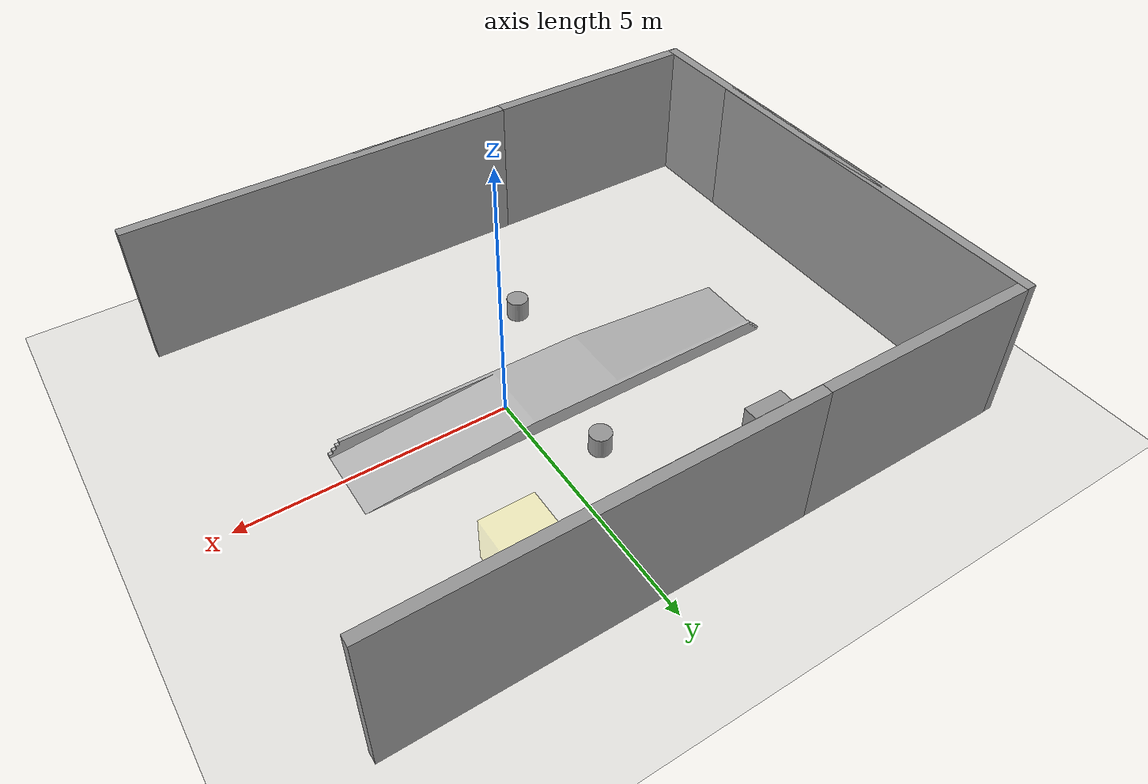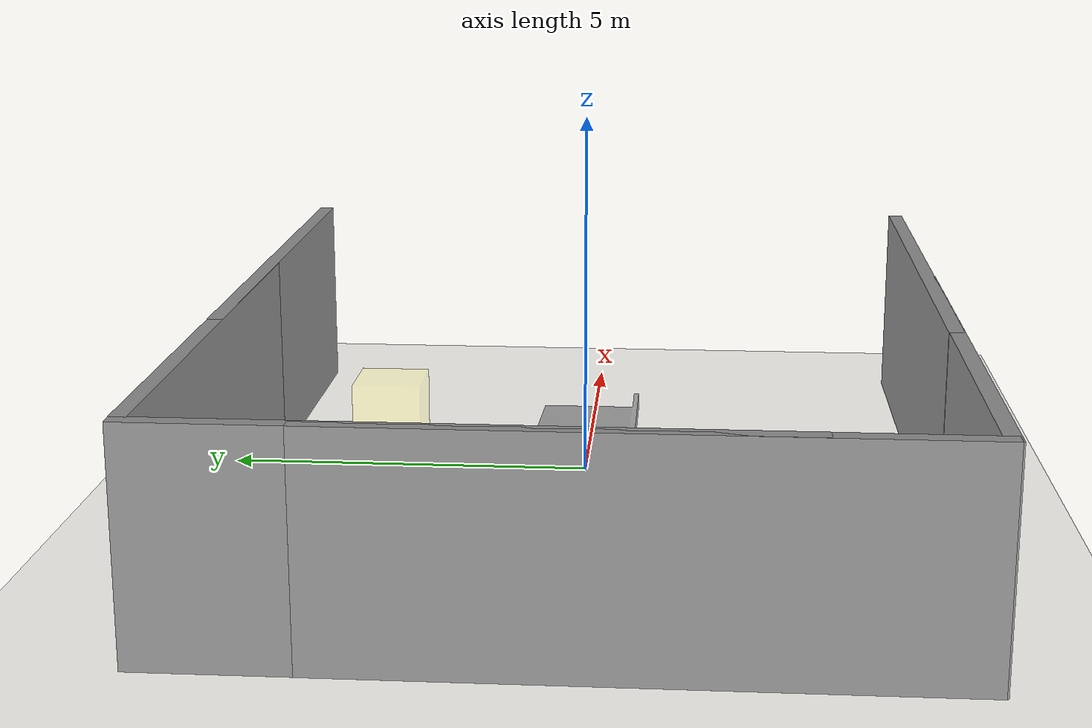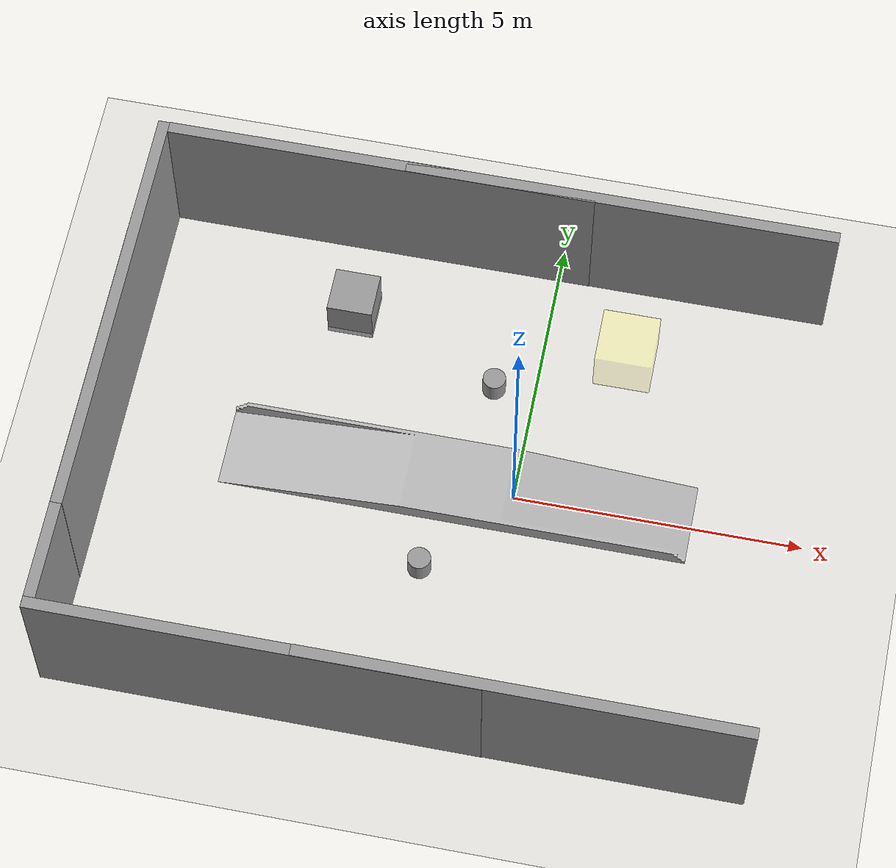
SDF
<sdf version="1.6">
 <world name="default">
  <model name="ground_plane">
   <static>1</static>
   <link name="link">
    <collision name="collision">
     <geometry><plane><normal>0 0 1</normal><size>100 100</size></plane></geometry>
     <surface>
      <contact><collide_bitmask>65535</collide_bitmask></contact>
      <friction><ode><mu>100</mu><mu2>50</mu2></ode></friction>
     </surface>
    </collision>
    <visual name="visual">
     <cast_shadows>0</cast_shadows>
     <geometry><plane><normal>0 0 1</normal><size>100 100</size></plane></geometry>
     <material>
      <script><uri>file://media/materials/scripts/gazebo.material</uri><name>Gazebo/Grey</name></script>
     </material>
    </visual>
   </link>
  </model>
  <model name="environment">
   <static>1</static>
   <link name="base">
    <visual name="visual">
     <geometry><mesh><uri>model://slope/meshes/slope_no.stl</uri><scale>0.7 0.7 0.7</scale></mesh></geometry>
    </visual>
    <collision name="environment_collision">
     <geometry><mesh><uri>model://slope/meshes/slope_no.stl</uri><scale>0.7 0.7 0.7</scale></mesh></geometry>
     <surface><friction><ode><mu>1</mu><mu2>1</mu2></ode></friction></surface>
    </collision>
   </link>
   <pose>-4.6695 1.43215 -1.05 1.57 -0 0</pose>
  </model>
  <model name="grey_wall">
   <static>1</static>
   <link name="link">
    <pose>0 0 1.4 0 -0 0</pose>
    <collision name="collision"><geometry><box><size>7.5 0.2 2.8</size></box></geometry></collision>
    <visual name="visual">
     <cast_shadows>0</cast_shadows>
     <geometry><box><size>7.5 0.2 2.8</size></box></geometry>
     <material>
      <script>
       <uri>model://grey_wall/materials/scripts</uri>
       <uri>model://grey_wall/materials/textures</uri>
       <name>vrc/grey_wall</name>
      </script>
     </material>
    </visual>
   </link>
   <pose>-3.41093 -4.70615 0 0 -0 0</pose>
  </model>
  <model name="grey_wall_clone">
   <static>1</static>
   <link name="link">
    <pose>0 0 1.4 0 -0 0</pose>
    <collision name="collision"><geometry><box><size>7.5 0.2 2.8</size></box></geometry></collision>
    <visual name="visual">
     <cast_shadows>0</cast_shadows>
     <geometry><box><size>7.5 0.2 2.8</size></box></geometry>
     <material>
      <script>
       <uri>model://grey_wall/materials/scripts</uri>
       <uri>model://grey_wall/materials/textures</uri>
       <name>vrc/grey_wall</name>
      </script>
     </material>
    </visual>
   </link>
   <pose>0.974361 -4.6999 0 0 -0 0</pose>
  </model>
  <model name="grey_wall_clone_0">
   <static>1</static>
   <link name="link">
    <pose>0 0 1.4 0 -0 0</pose>
    <collision name="collision"><geometry><box><size>7.5 0.2 2.8</size></box></geometry></collision>
    <visual name="visual">
     <cast_shadows>0</cast_shadows>
     <geometry><box><size>7.5 0.2 2.8</size></box></geometry>
     <material>
      <script>
       <uri>model://grey_wall/materials/scripts</uri>
       <uri>model://grey_wall/materials/textures</uri>
       <name>vrc/grey_wall</name>
      </script>
     </material>
    </visual>
   </link>
   <pose>-3.22137 4.51463 0 0 -0 0</pose>
  </model>
  <model name="grey_wall_clone_1">
   <static>1</static>
   <link name="link">
    <pose>0 0 1.4 0 -0 0</pose>
    <collision name="collision"><geometry><box><size>7.5 0.2 2.8</size></box></geometry></collision>
    <visual name="visual">
     <cast_shadows>0</cast_shadows>
     <geometry><box><size>7.5 0.2 2.8</size></box></geometry>
     <material>
      <script>
       <uri>model://grey_wall/materials/scripts</uri>
       <uri>model://grey_wall/materials/textures</uri>
       <name>vrc/grey_wall</name>
      </script>
     </material>
    </visual>
   </link>
   <pose>0.979016 4.51971 0 0 -0 0</pose>
  </model>
  <model name="grey_wall_clone_2_clone_0">
   <static>1</static>
   <link name="link">
    <pose>0 0 1.4 0 -0 0</pose>
    <collision name="collision"><geometry><box><size>7.5 0.2 2.8</size></box></geometry></collision>
    <visual name="visual">
     <cast_shadows>0</cast_shadows>
     <geometry><box><size>7.5 0.2 2.8</size></box></geometry>
     <material>
      <script>
       <uri>model://grey_wall/materials/scripts</uri>
       <uri>model://grey_wall/materials/textures</uri>
       <name>vrc/grey_wall</name>
      </script>
     </material>
    </visual>
   </link>
   <pose>-7.06045 -1.03607 0 0 -0 1.57</pose>
  </model>
  <model name="grey_wall_clone_2_clone_1">
   <static>1</static>
   <link name="link">
    <pose>0 0 1.4 0 -0 0</pose>
    <collision name="collision"><geometry><box><size>7.5 0.2 2.8</size></box></geometry></collision>
    <visual name="visual">
     <cast_shadows>0</cast_shadows>
     <geometry><box><size>7.5 0.2 2.8</size></box></geometry>
     <material>
      <script>
       <uri>model://grey_wall/materials/scripts</uri>
       <uri>model://grey_wall/materials/textures</uri>
       <name>vrc/grey_wall</name>
      </script>
     </material>
    </visual>
   </link>
   <pose>-7.05567 0.857925 0 0 -0 1.57</pose>
  </model>
  <model name="unit_box_0">
   <pose>-3.45412 3.12107 0.25 0 -0 5e-06</pose>
   <link name="link">
    <inertial>
     <mass>1</mass>
     <inertia>
      <ixx>0.166667</ixx>
      <ixy>0</ixy>
      <ixz>0</ixz>
      <iyy>0.166667</iyy>
      <iyz>0</iyz>
      <izz>0.166667</izz>
     </inertia>
    </inertial>
    <collision name="collision"><geometry><box><size>0.8 0.8 0.8</size></box></geometry></collision>
    <visual name="visual">
     <geometry><box><size>0.8 0.8 0.8</size></box></geometry>
     <material>
      <script><name>Gazebo/Grey</name><uri>file://media/materials/scripts/gazebo.material</uri></script>
     </material>
    </visual>
   </link>
  </model>
  <model name="RegionEventBox">
   <static>1</static>
   <pose>1.43786 2.99061 0 0 -0 0</pose>
   <link name="link">
    <visual name="visual">
     <transparency>0.75</transparency>
     <geometry><box><size>1 1 1.75</size></box></geometry>
     <material>
      <script><uri>file://media/materials/scripts/gazebo.material</uri><name>Gazebo/Yellow</name></script>
     </material>
    </visual>
   </link>
   <plugin name="region_event_box" filename="libRegionEventBoxPlugin.so">
    <event><name>model_in_region_event_box</name><type>inclusion</type><active>1</active></event>
   </plugin>
  </model>
  <model name="unit_cylinder">
   <pose>-1.30529 -1.74657 0.482532 -0.000796 -0 -1.1e-05</pose>
   <link name="link">
    <inertial>
     <mass>1</mass>
     <inertia><ixx>0.145833</ixx><ixy>0</ixy><ixz>0</ixz><iyy>0.145833</iyy><iyz>0</iyz><izz>0.125</izz></inertia>
    </inertial>
    <collision name="collision">
     <geometry><cylinder><radius>0.2</radius><length>0.4</length></cylinder></geometry>
    </collision>
    <visual name="visual">
     <geometry><cylinder><radius>0.2</radius><length>0.4</length></cylinder></geometry>
     <material>
      <script><name>Gazebo/Grey</name><uri>file://media/materials/scripts/gazebo.material</uri></script>
     </material>
    </visual>
   </link>
  </model>
  <model name="unit_cylinder_0">
   <pose>-0.70669 1.87978 0.479644 -0.000797 -1.8e-05 -0.020076</pose>
   <link name="link">
    <inertial>
     <mass>1</mass>
     <inertia><ixx>0.145833</ixx><ixy>0</ixy><ixz>0</ixz><iyy>0.145833</iyy><iyz>0</iyz><izz>0.125</izz></inertia>
    </inertial>
    <collision name="collision">
     <geometry><cylinder><radius>0.2</radius><length>0.4</length></cylinder></geometry>
    </collision>
    <visual name="visual">
     <geometry><cylinder><radius>0.2</radius><length>0.4</length></cylinder></geometry>
     <material>
      <script><name>Gazebo/Grey</name><uri>file://media/materials/scripts/gazebo.material</uri></script>
     </material>
    </visual>
   </link>
  </model>
 </world>
</sdf>
